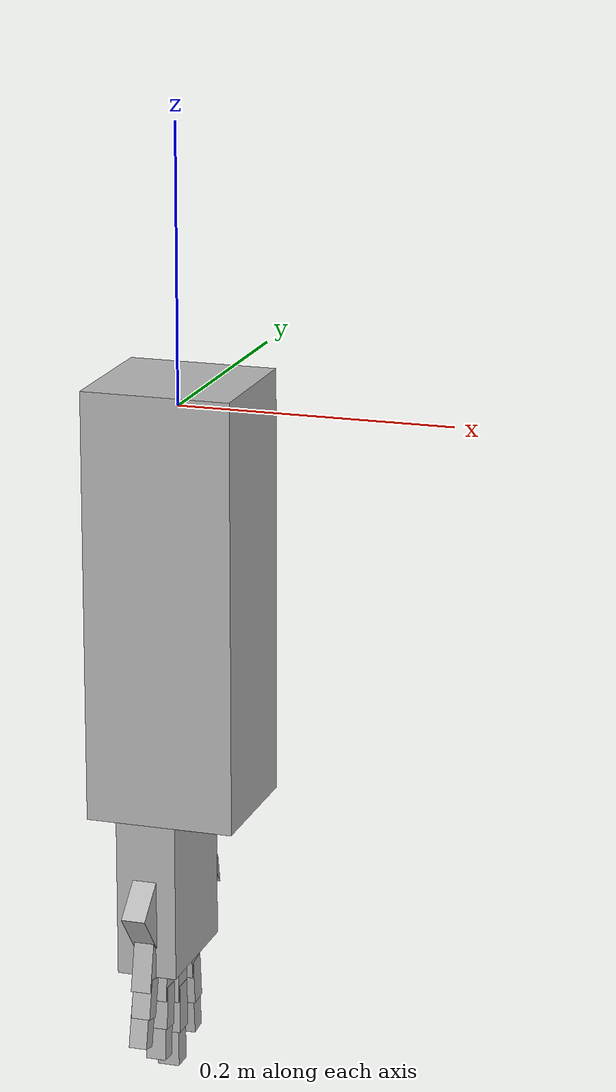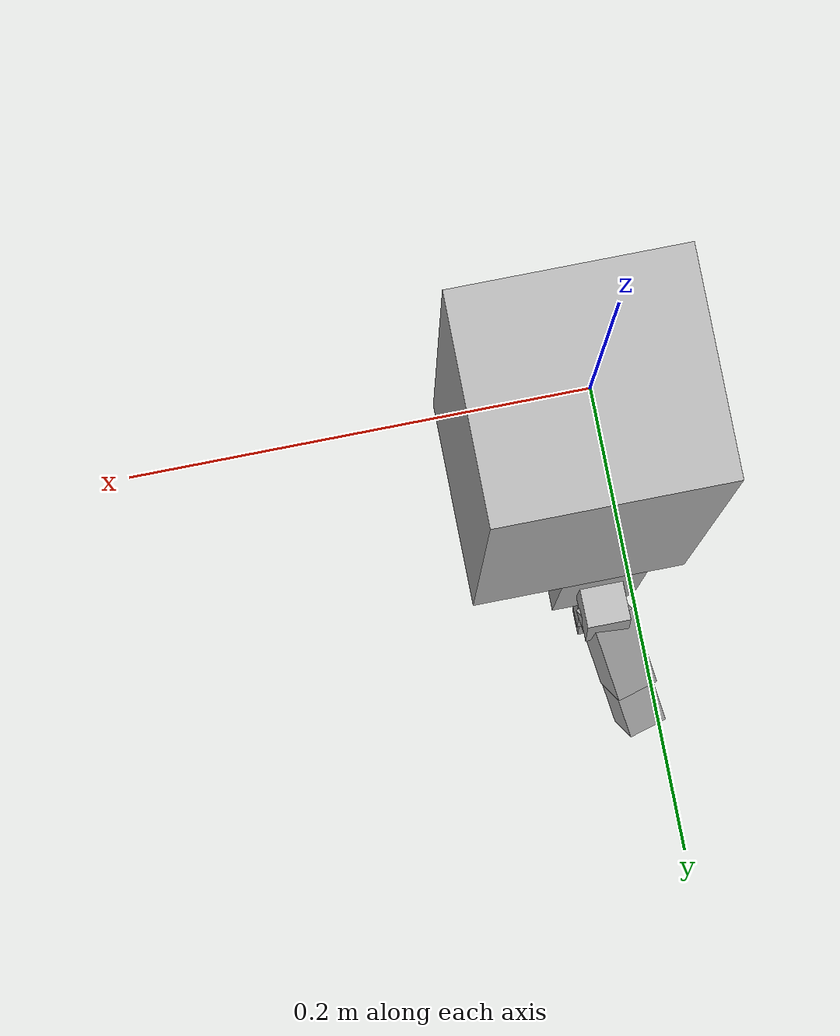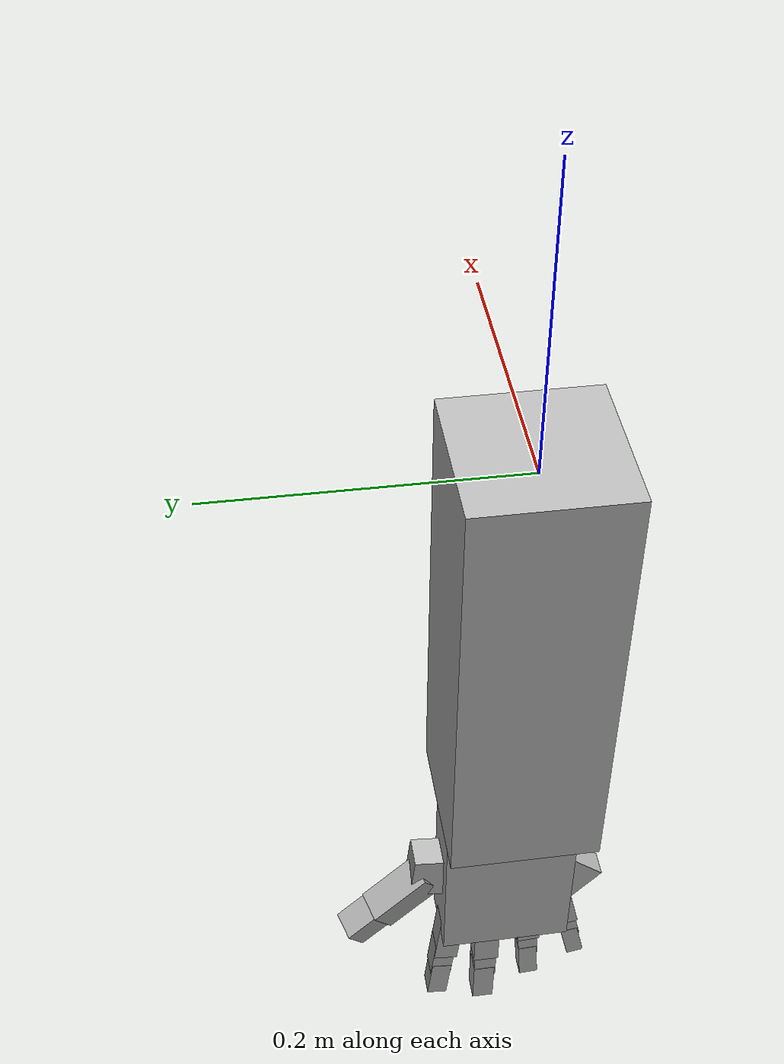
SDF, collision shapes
<sdf version='1.11'>
  <model name='inmoov_right_hand'>
    <link name='base_link'>
      <inertial>
        <pose>0.0002699999999999999 0.0013140000000000001 -0.13950299999999999 0 0 0</pose>
        <mass>0.089999999999999997</mass>
        <inertia>
          <ixx>0.00082543799999999974</ixx>
          <ixy>-6.6174449004242207e-24</ixy>
          <ixz>8.4703294725430034e-22</ixz>
          <iyy>0.0008331250000000001</iyy>
          <iyz>0</iyz>
          <izz>0.00016974700000000001</izz>
        </inertia>
      </inertial>
      <collision name='base_link_fixed_joint_lump__forearm_link_collision_collision'>
        <pose>0.00027 0.0013140000000000001 -0.13950299999999999 0 0 0</pose>
        <geometry>
          <box>
            <size>0.108761 0.10394200000000001 0.31504700000000002</size>
          </box>
        </geometry>
      </collision>
      <visual name='base_link_fixed_joint_lump__forearm_link_visual_visual'>
        <pose>0 0 0 0 0 0</pose>
        <geometry>
          <mesh>
            <scale>0.001 0.001 0.001</scale>
            <uri>meshes/r_forearm.stl</uri>
          </mesh>
        </geometry>
      </visual>
    </link>
    <joint name='wrist_joint' type='revolute'>
      <pose relative_to='base_link'>-0.0144 0.01 -0.28849999999999998 0 0 0</pose>
      <parent>base_link</parent>
      <child>hand_link</child>
      <axis>
        <xyz>0 0 1</xyz>
        <limit>
          <lower>-3.1415899999999999</lower>
          <upper>0</upper>
          <effort>2</effort>
          <velocity>1</velocity>
        </limit>
        <dynamics>
          <spring_reference>0</spring_reference>
          <spring_stiffness>0</spring_stiffness>
        </dynamics>
      </axis>
    </joint>
    <link name='hand_link'>
      <pose relative_to='wrist_joint'>0 0 0 0 0 0</pose>
      <inertial>
        <pose>0.00061799999999999995 -0.0040000000000000001 -0.064310000000000006 0 0 0</pose>
        <mass>0.080000000000000002</mass>
        <inertia>
          <ixx>0.000167935</ixx>
          <ixy>0</ixy>
          <ixz>0</ixz>
          <iyy>0.000123199</iyy>
          <iyz>0</iyz>
          <izz>7.0939999999999995e-05</izz>
        </inertia>
      </inertial>
      <collision name='hand_link_collision_collision'>
        <pose>0.00061799999999999995 -0.0040000000000000001 -0.064310000000000006 0 0 0</pose>
        <geometry>
          <box>
            <size>0.044331000000000002 0.093143000000000004 0.12850900000000001</size>
          </box>
        </geometry>
      </collision>
      <visual name='hand_link_visual_visual'>
        <pose>0 0 0 0 0 0</pose>
        <geometry>
          <mesh>
            <scale>0.001 0.001 0.001</scale>
            <uri>meshes/r_hand.stl</uri>
          </mesh>
        </geometry>
      </visual>
    </link>
    <joint name='index1_joint' type='revolute'>
      <pose relative_to='hand_link'>-0.0015 0.034200000000000001 -0.11899999999999999 0.099999999999999978 0 0</pose>
      <parent>hand_link</parent>
      <child>index1_link</child>
      <axis>
        <xyz>0 1 0</xyz>
        <limit>
          <lower>0</lower>
          <upper>1.5708</upper>
          <effort>2</effort>
          <velocity>0.78539999999999999</velocity>
        </limit>
        <dynamics>
          <spring_reference>0</spring_reference>
          <spring_stiffness>0</spring_stiffness>
        </dynamics>
      </axis>
    </joint>
    <link name='index1_link'>
      <pose relative_to='index1_joint'>0 0 0 0 0 0</pose>
      <inertial>
        <pose>0.000214 -3.4999999999999997e-05 -0.018217000000000001 0 0 0</pose>
        <mass>0.012</mass>
        <inertia>
          <ixx>2.6809999999999998e-06</ixx>
          <ixy>0</ixy>
          <ixz>0</ixz>
          <iyy>2.6769999999999999e-06</iyy>
          <iyz>0</iyz>
          <izz>5.9800000000000003e-07</izz>
        </inertia>
      </inertial>
      <collision name='index1_link_collision_collision'>
        <pose>0.000214 -3.4999999999999997e-05 -0.018217000000000001 0 0 0</pose>
        <geometry>
          <box>
            <size>0.017239000000000001 0.017350000000000001 0.048786000000000003</size>
          </box>
        </geometry>
      </collision>
      <visual name='index1_link_visual_visual'>
        <pose>0 0 0 0 0 0</pose>
        <geometry>
          <mesh>
            <scale>0.001 0.001 0.001</scale>
            <uri>meshes/index3_1.stl</uri>
          </mesh>
        </geometry>
      </visual>
    </link>
    <joint name='index_joint' type='revolute'>
      <pose relative_to='index1_link'>0 0.001 -0.035950000000000003 0 0 0</pose>
      <parent>index1_link</parent>
      <child>index2_link</child>
      <axis>
        <xyz>0 1 0</xyz>
        <mimic joint='index1_joint'>
          <multiplier>1</multiplier>
          <offset>0</offset>
          <reference>0</reference>
        </mimic>
        <limit>
          <lower>0</lower>
          <upper>1.5708</upper>
          <effort>0</effort>
          <velocity>0.78539999999999999</velocity>
        </limit>
        <dynamics>
          <spring_reference>0</spring_reference>
          <spring_stiffness>0</spring_stiffness>
        </dynamics>
      </axis>
    </joint>
    <link name='index2_link'>
      <pose relative_to='index_joint'>0 0 0 0 0 0</pose>
      <inertial>
        <pose>0.00094600000000000001 3.4999999999999997e-05 -0.012097999999999999 0 0 0</pose>
        <mass>0.0080000000000000002</mass>
        <inertia>
          <ixx>9.3099999999999996e-07</ixx>
          <ixy>0</ixy>
          <ixz>0</ixz>
          <iyy>9.5300000000000002e-07</iyy>
          <iyz>0</iyz>
          <izz>3.3700000000000001e-07</izz>
        </inertia>
      </inertial>
      <collision name='index2_link_collision_collision'>
        <pose>0.00094600000000000001 3.4999999999999997e-05 -0.012097999999999999 0 0 0</pose>
        <geometry>
          <box>
            <size>0.016419 0.01536 0.034057999999999998</size>
          </box>
        </geometry>
      </collision>
      <visual name='index2_link_visual_visual'>
        <pose>0 0 0 0 0 0</pose>
        <geometry>
          <mesh>
            <scale>0.001 0.001 0.001</scale>
            <uri>meshes/index3_2.stl</uri>
          </mesh>
        </geometry>
      </visual>
    </link>
    <joint name='index3_joint' type='revolute'>
      <pose relative_to='index2_link'>0 0 -0.024 0 0 0</pose>
      <parent>index2_link</parent>
      <child>index3_link</child>
      <axis>
        <xyz>0 1 0</xyz>
        <mimic joint='index1_joint'>
          <multiplier>1</multiplier>
          <offset>0</offset>
          <reference>0</reference>
        </mimic>
        <limit>
          <lower>0</lower>
          <upper>1.5708</upper>
          <effort>0</effort>
          <velocity>0.78539999999999999</velocity>
        </limit>
        <dynamics>
          <spring_reference>0</spring_reference>
          <spring_stiffness>0</spring_stiffness>
        </dynamics>
      </axis>
    </joint>
    <link name='index3_link'>
      <pose relative_to='index3_joint'>0 0 0 0 0 0</pose>
      <inertial>
        <pose>0.00018100000000000001 -3.8999999999999999e-05 -0.012760000000000001 0 0 0</pose>
        <mass>0.0050000000000000001</mass>
        <inertia>
          <ixx>6.0100000000000005e-07</ixx>
          <ixy>0</ixy>
          <ixz>0</ixz>
          <iyy>6.13e-07</iyy>
          <iyz>0</iyz>
          <izz>1.9000000000000001e-07</izz>
        </inertia>
      </inertial>
      <collision name='index3_link_collision_collision'>
        <pose>0.00018100000000000001 -3.8999999999999999e-05 -0.012760000000000001 0 0 0</pose>
        <geometry>
          <box>
            <size>0.01553 0.014616000000000001 0.035068000000000002</size>
          </box>
        </geometry>
      </collision>
      <visual name='index3_link_visual_visual'>
        <pose>0 0 0 0 0 0</pose>
        <geometry>
          <mesh>
            <scale>0.001 0.001 0.001</scale>
            <uri>meshes/index3_3.stl</uri>
          </mesh>
        </geometry>
      </visual>
    </link>
    <joint name='middle1_joint' type='revolute'>
      <pose relative_to='hand_link'>-0.00175 0.0070000000000000001 -0.12325 0 0 0</pose>
      <parent>hand_link</parent>
      <child>middle1_link</child>
      <axis>
        <xyz>0 1 0</xyz>
        <limit>
          <lower>0</lower>
          <upper>1.5708</upper>
          <effort>2</effort>
          <velocity>0.78539999999999999</velocity>
        </limit>
        <dynamics>
          <spring_reference>0</spring_reference>
          <spring_stiffness>0</spring_stiffness>
        </dynamics>
      </axis>
    </joint>
    <link name='middle1_link'>
      <pose relative_to='middle1_joint'>0 0 0 0 0 0</pose>
      <inertial>
        <pose>0.00013200000000000001 5.0000000000000004e-06 -0.019390999999999999 0 0 0</pose>
        <mass>0.012</mass>
        <inertia>
          <ixx>3.0819999999999999e-06</ixx>
          <ixy>0</ixy>
          <ixz>0</ixz>
          <iyy>3.078e-06</iyy>
          <iyz>0</iyz>
          <izz>6.8800000000000002e-07</izz>
        </inertia>
      </inertial>
      <collision name='middle1_link_collision_collision'>
        <pose>0.00013200000000000001 5.0000000000000004e-06 -0.019390999999999999 0 0 0</pose>
        <geometry>
          <box>
            <size>0.018482999999999999 0.018603000000000001 0.052306999999999999</size>
          </box>
        </geometry>
      </collision>
      <visual name='middle1_link_visual_visual'>
        <pose>0 0 0 0 0 0</pose>
        <geometry>
          <mesh>
            <scale>0.001 0.001 0.001</scale>
            <uri>meshes/middle3_1.stl</uri>
          </mesh>
        </geometry>
      </visual>
    </link>
    <joint name='middle_joint' type='revolute'>
      <pose relative_to='middle1_link'>0 0 -0.038899999999999997 0 0 0</pose>
      <parent>middle1_link</parent>
      <child>middle2_link</child>
      <axis>
        <xyz>0 1 0</xyz>
        <mimic joint='middle1_joint'>
          <multiplier>1</multiplier>
          <offset>0</offset>
          <reference>0</reference>
        </mimic>
        <limit>
          <lower>0</lower>
          <upper>1.5708</upper>
          <effort>0</effort>
          <velocity>0.78539999999999999</velocity>
        </limit>
        <dynamics>
          <spring_reference>0</spring_reference>
          <spring_stiffness>0</spring_stiffness>
        </dynamics>
      </axis>
    </joint>
    <link name='middle2_link'>
      <pose relative_to='middle_joint'>0 0 0 0 0 0</pose>
      <inertial>
        <pose>0.0010300000000000001 -1.7e-05 -0.012930000000000001 0 0 0</pose>
        <mass>0.0080000000000000002</mass>
        <inertia>
          <ixx>1.0699999999999999e-06</ixx>
          <ixy>0</ixy>
          <ixz>0</ixz>
          <iyy>1.096e-06</iyy>
          <iyz>0</iyz>
          <izz>3.8700000000000001e-07</izz>
        </inertia>
      </inertial>
      <collision name='middle2_link_collision_collision'>
        <pose>0.0010300000000000001 -1.7e-05 -0.012930000000000001 0 0 0</pose>
        <geometry>
          <box>
            <size>0.017604000000000002 0.016469000000000001 0.036516</size>
          </box>
        </geometry>
      </collision>
      <visual name='middle2_link_visual_visual'>
        <pose>0 0 0 0 0 0</pose>
        <geometry>
          <mesh>
            <scale>0.001 0.001 0.001</scale>
            <uri>meshes/middle3_2.stl</uri>
          </mesh>
        </geometry>
      </visual>
    </link>
    <joint name='middle3_joint' type='revolute'>
      <pose relative_to='middle2_link'>0 0.00050000000000000001 -0.025899999999999999 0 0 0</pose>
      <parent>middle2_link</parent>
      <child>middle3_link</child>
      <axis>
        <xyz>0 1 0</xyz>
        <mimic joint='middle1_joint'>
          <multiplier>1</multiplier>
          <offset>0</offset>
          <reference>0</reference>
        </mimic>
        <limit>
          <lower>0</lower>
          <upper>1.5708</upper>
          <effort>0</effort>
          <velocity>0.78539999999999999</velocity>
        </limit>
        <dynamics>
          <spring_reference>0</spring_reference>
          <spring_stiffness>0</spring_stiffness>
        </dynamics>
      </axis>
    </joint>
    <link name='middle3_link'>
      <pose relative_to='middle3_joint'>0 0 0 0 0 0</pose>
      <inertial>
        <pose>0.0001 -2.4000000000000001e-05 -0.01374 0 0 0</pose>
        <mass>0.0050000000000000001</mass>
        <inertia>
          <ixx>6.9100000000000003e-07</ixx>
          <ixy>0</ixy>
          <ixz>0</ixz>
          <iyy>7.0500000000000003e-07</iyy>
          <iyz>0</iyz>
          <izz>2.1799999999999999e-07</izz>
        </inertia>
      </inertial>
      <collision name='middle3_link_collision_collision'>
        <pose>0.0001 -2.4000000000000001e-05 -0.01374 0 0 0</pose>
        <geometry>
          <box>
            <size>0.016650999999999999 0.015671000000000001 0.037599</size>
          </box>
        </geometry>
      </collision>
      <visual name='middle3_link_visual_visual'>
        <pose>0 0 0 0 0 0</pose>
        <geometry>
          <mesh>
            <scale>0.001 0.001 0.001</scale>
            <uri>meshes/middle3_3.stl</uri>
          </mesh>
        </geometry>
      </visual>
    </link>
    <joint name='pinky1_joint' type='revolute'>
      <pose relative_to='hand_link'>0 -0.027 -0.055500000000000001 0.69999999999999996 0 0</pose>
      <parent>hand_link</parent>
      <child>pinky1_link</child>
      <axis>
        <xyz>0 0 -1</xyz>
        <limit>
          <lower>0</lower>
          <upper>1.5708</upper>
          <effort>2</effort>
          <velocity>0.78539999999999999</velocity>
        </limit>
        <dynamics>
          <spring_reference>0</spring_reference>
          <spring_stiffness>0</spring_stiffness>
        </dynamics>
      </axis>
    </joint>
    <link name='pinky1_link'>
      <pose relative_to='pinky1_joint'>0 0 0 0 0 0</pose>
      <inertial>
        <pose>-0.000348 -0.021364000000000001 -0.0063790000000000001 0 0 0</pose>
        <mass>0.012</mass>
        <inertia>
          <ixx>5.3510000000000001e-06</ixx>
          <ixy>0</ixy>
          <ixz>0</ixz>
          <iyy>2.198e-06</iyy>
          <iyz>0</iyz>
          <izz>3.7799999999999998e-06</izz>
        </inertia>
      </inertial>
      <collision name='pinky1_link_collision_collision'>
        <pose>-0.000348 -0.021364000000000001 -0.0063790000000000001 0 0 0</pose>
        <geometry>
          <box>
            <size>0.017696 0.058876999999999999 0.043410999999999998</size>
          </box>
        </geometry>
      </collision>
      <visual name='pinky1_link_visual_visual'>
        <pose>0 0 0 0 0 0</pose>
        <geometry>
          <mesh>
            <scale>0.001 0.001 0.001</scale>
            <uri>meshes/r_pinky3_1.stl</uri>
          </mesh>
        </geometry>
      </visual>
    </link>
    <joint name='pinky_joint' type='revolute'>
      <pose relative_to='pinky1_link'>0 -0.045999999999999999 -0.022800000000000001 -0.93000000000000005 0 0</pose>
      <parent>pinky1_link</parent>
      <child>pinky2_link</child>
      <axis>
        <xyz>0 1 0</xyz>
        <mimic joint='pinky1_joint'>
          <multiplier>1</multiplier>
          <offset>0</offset>
          <reference>0</reference>
        </mimic>
        <limit>
          <lower>0</lower>
          <upper>1.5708</upper>
          <effort>0</effort>
          <velocity>0.78539999999999999</velocity>
        </limit>
        <dynamics>
          <spring_reference>0</spring_reference>
          <spring_stiffness>0</spring_stiffness>
        </dynamics>
      </axis>
    </joint>
    <link name='pinky2_link'>
      <pose relative_to='pinky_joint'>0 0 0 0 0 0</pose>
      <inertial>
        <pose>0.00019799999999999999 6.3999999999999997e-05 -0.015606999999999999 0 0 0</pose>
        <mass>0.0080000000000000002</mass>
        <inertia>
          <ixx>1.3200000000000001e-06</ixx>
          <ixy>0</ixy>
          <ixz>0</ixz>
          <iyy>1.3179999999999999e-06</iyy>
          <iyz>0</iyz>
          <izz>2.9499999999999998e-07</izz>
        </inertia>
      </inertial>
      <collision name='pinky2_link_collision_collision'>
        <pose>0.00019799999999999999 6.3999999999999997e-05 -0.015606999999999999 0 0 0</pose>
        <geometry>
          <box>
            <size>0.014814000000000001 0.01491 0.041924000000000003</size>
          </box>
        </geometry>
      </collision>
      <visual name='pinky2_link_visual_visual'>
        <pose>0 0 0 0 0 0</pose>
        <geometry>
          <mesh>
            <scale>0.001 0.001 0.001</scale>
            <uri>meshes/pinky3_2.stl</uri>
          </mesh>
        </geometry>
      </visual>
    </link>
    <joint name='pinky3_joint' type='revolute'>
      <pose relative_to='pinky2_link'>0 0.00050000000000000001 -0.031 0 0 0</pose>
      <parent>pinky2_link</parent>
      <child>pinky3_link</child>
      <axis>
        <xyz>0 1 0</xyz>
        <mimic joint='pinky1_joint'>
          <multiplier>1</multiplier>
          <offset>0</offset>
          <reference>0</reference>
        </mimic>
        <limit>
          <lower>0</lower>
          <upper>1.5708</upper>
          <effort>0</effort>
          <velocity>0.78539999999999999</velocity>
        </limit>
        <dynamics>
          <spring_reference>0</spring_reference>
          <spring_stiffness>0</spring_stiffness>
        </dynamics>
      </axis>
    </joint>
    <link name='pinky3_link'>
      <pose relative_to='pinky3_joint'>0 0 0 0 0 0</pose>
      <inertial>
        <pose>0.000861 -4.3000000000000002e-05 -0.01044 0 0 0</pose>
        <mass>0.0060000000000000001</mass>
        <inertia>
          <ixx>5.1500000000000005e-07</ixx>
          <ixy>0</ixy>
          <ixz>0</ixz>
          <iyy>5.2799999999999996e-07</iyy>
          <iyz>0</iyz>
          <izz>1.8699999999999999e-07</izz>
        </inertia>
      </inertial>
      <collision name='pinky3_link_collision_collision'>
        <pose>0.000861 -4.3000000000000002e-05 -0.01044 0 0 0</pose>
        <geometry>
          <box>
            <size>0.014109999999999999 0.0132 0.029267999999999999</size>
          </box>
        </geometry>
      </collision>
      <visual name='pinky3_link_visual_visual'>
        <pose>0 0 0 0 0 0</pose>
        <geometry>
          <mesh>
            <scale>0.001 0.001 0.001</scale>
            <uri>meshes/pinky3_3.stl</uri>
          </mesh>
        </geometry>
      </visual>
    </link>
    <joint name='pinky4_joint' type='revolute'>
      <pose relative_to='pinky3_link'>0 0.00040000000000000002 -0.020799999999999999 0 0 0</pose>
      <parent>pinky3_link</parent>
      <child>pinky4_link</child>
      <axis>
        <xyz>0 1 0</xyz>
        <mimic joint='pinky1_joint'>
          <multiplier>1</multiplier>
          <offset>0</offset>
          <reference>0</reference>
        </mimic>
        <limit>
          <lower>0</lower>
          <upper>1.5708</upper>
          <effort>0</effort>
          <velocity>0.78539999999999999</velocity>
        </limit>
        <dynamics>
          <spring_reference>0</spring_reference>
          <spring_stiffness>0</spring_stiffness>
        </dynamics>
      </axis>
    </joint>
    <link name='pinky4_link'>
      <pose relative_to='pinky4_joint'>0 0 0 0 0 0</pose>
      <inertial>
        <pose>0.000107 -2.9e-05 -0.011013999999999999 0 0 0</pose>
        <mass>0.0050000000000000001</mass>
        <inertia>
          <ixx>4.4400000000000001e-07</ixx>
          <ixy>0</ixy>
          <ixz>0</ixz>
          <iyy>4.5299999999999999e-07</iyy>
          <iyz>0</iyz>
          <izz>1.4000000000000001e-07</izz>
        </inertia>
      </inertial>
      <collision name='pinky4_link_collision_collision'>
        <pose>0.000107 -2.9e-05 -0.011013999999999999 0 0 0</pose>
        <geometry>
          <box>
            <size>0.013346 0.01256 0.030136</size>
          </box>
        </geometry>
      </collision>
      <visual name='pinky4_link_visual_visual'>
        <pose>0 0 0 0 0 0</pose>
        <geometry>
          <mesh>
            <scale>0.001 0.001 0.001</scale>
            <uri>meshes/pinky3_4.stl</uri>
          </mesh>
        </geometry>
      </visual>
    </link>
    <joint name='ring1_joint' type='revolute'>
      <pose relative_to='hand_link'>0 -0.0070499999999999998 -0.079399999999999998 0.69999999999999996 0 0</pose>
      <parent>hand_link</parent>
      <child>ring1_link</child>
      <axis>
        <xyz>0 0 -1</xyz>
        <limit>
          <lower>0</lower>
          <upper>1.5708</upper>
          <effort>2</effort>
          <velocity>0.78539999999999999</velocity>
        </limit>
        <dynamics>
          <spring_reference>0</spring_reference>
          <spring_stiffness>0</spring_stiffness>
        </dynamics>
      </axis>
    </joint>
    <link name='ring1_link'>
      <pose relative_to='ring1_joint'>0 0 0 0 0 0</pose>
      <inertial>
        <pose>2.3e-05 -0.016583000000000001 -0.0032989999999999998 0 0 0</pose>
        <mass>0.012</mass>
        <inertia>
          <ixx>3.8430000000000003e-06</ixx>
          <ixy>0</ixy>
          <ixz>0</ixz>
          <iyy>1.764e-06</iyy>
          <iyz>0</iyz>
          <izz>2.7049999999999999e-06</izz>
        </inertia>
      </inertial>
      <collision name='ring1_link_collision_collision'>
        <pose>2.3e-05 -0.016583000000000001 -0.0032989999999999998 0 0 0</pose>
        <geometry>
          <box>
            <size>0.017686 0.048905999999999998 0.038092000000000001</size>
          </box>
        </geometry>
      </collision>
      <visual name='ring1_link_visual_visual'>
        <pose>0 0 0 0 0 0</pose>
        <geometry>
          <mesh>
            <scale>0.001 0.001 0.001</scale>
            <uri>meshes/r_ring3_1.stl</uri>
          </mesh>
        </geometry>
      </visual>
    </link>
    <joint name='ring_joint' type='revolute'>
      <pose relative_to='ring1_link'>0.0012600000000000001 -0.035099999999999999 -0.0166 -0.77749999999999997 0 0</pose>
      <parent>ring1_link</parent>
      <child>ring2_link</child>
      <axis>
        <xyz>0 1 0</xyz>
        <mimic joint='ring1_joint'>
          <multiplier>1</multiplier>
          <offset>0</offset>
          <reference>0</reference>
        </mimic>
        <limit>
          <lower>0</lower>
          <upper>1.5708</upper>
          <effort>0</effort>
          <velocity>0.78539999999999999</velocity>
        </limit>
        <dynamics>
          <spring_reference>0</spring_reference>
          <spring_stiffness>0</spring_stiffness>
        </dynamics>
      </axis>
    </joint>
    <link name='ring2_link'>
      <pose relative_to='ring_joint'>0 0 0 0 0 0</pose>
      <inertial>
        <pose>0.00012300000000000001 -4.1e-05 -0.017267000000000001 0 0 0</pose>
        <mass>0.0080000000000000002</mass>
        <inertia>
          <ixx>1.6279999999999999e-06</ixx>
          <ixy>0</ixy>
          <ixz>0</ixz>
          <iyy>1.6249999999999999e-06</iyy>
          <iyz>0</iyz>
          <izz>3.6300000000000001e-07</izz>
        </inertia>
      </inertial>
      <collision name='ring2_link_collision_collision'>
        <pose>0.00012300000000000001 -4.1e-05 -0.017267000000000001 0 0 0</pose>
        <geometry>
          <box>
            <size>0.016449999999999999 0.016556999999999999 0.046553999999999998</size>
          </box>
        </geometry>
      </collision>
      <visual name='ring2_link_visual_visual'>
        <pose>0 0 0 0 0 0</pose>
        <geometry>
          <mesh>
            <scale>0.001 0.001 0.001</scale>
            <uri>meshes/ring3_2.stl</uri>
          </mesh>
        </geometry>
      </visual>
    </link>
    <joint name='ring3_joint' type='revolute'>
      <pose relative_to='ring2_link'>0 0.00050000000000000001 -0.034500000000000003 0 0 0</pose>
      <parent>ring2_link</parent>
      <child>ring3_link</child>
      <axis>
        <xyz>0 1 0</xyz>
        <mimic joint='ring1_joint'>
          <multiplier>1</multiplier>
          <offset>0</offset>
          <reference>0</reference>
        </mimic>
        <limit>
          <lower>0</lower>
          <upper>1.5708</upper>
          <effort>0</effort>
          <velocity>0.78539999999999999</velocity>
        </limit>
        <dynamics>
          <spring_reference>0</spring_reference>
          <spring_stiffness>0</spring_stiffness>
        </dynamics>
      </axis>
    </joint>
    <link name='ring3_link'>
      <pose relative_to='ring3_joint'>0 0 0 0 0 0</pose>
      <inertial>
        <pose>0.00094899999999999997 1.5e-05 -0.011473000000000001 0 0 0</pose>
        <mass>0.0060000000000000001</mass>
        <inertia>
          <ixx>6.3600000000000003e-07</ixx>
          <ixy>0</ixy>
          <ixz>0</ixz>
          <iyy>6.5099999999999999e-07</iyy>
          <iyz>0</iyz>
          <izz>2.2999999999999999e-07</izz>
        </inertia>
      </inertial>
      <collision name='ring3_link_collision_collision'>
        <pose>0.00094899999999999997 1.5e-05 -0.011473000000000001 0 0 0</pose>
        <geometry>
          <box>
            <size>0.015668000000000001 0.014657999999999999 0.032500000000000001</size>
          </box>
        </geometry>
      </collision>
      <visual name='ring3_link_visual_visual'>
        <pose>0 0 0 0 0 0</pose>
        <geometry>
          <mesh>
            <scale>0.001 0.001 0.001</scale>
            <uri>meshes/ring3_3.stl</uri>
          </mesh>
        </geometry>
      </visual>
    </link>
    <joint name='ring4_joint' type='revolute'>
      <pose relative_to='ring3_link'>0 0.00040000000000000002 -0.0229 0 0 0</pose>
      <parent>ring3_link</parent>
      <child>ring4_link</child>
      <axis>
        <xyz>0 1 0</xyz>
        <mimic joint='ring1_joint'>
          <multiplier>1</multiplier>
          <offset>0</offset>
          <reference>0</reference>
        </mimic>
        <limit>
          <lower>0</lower>
          <upper>1.5708</upper>
          <effort>0</effort>
          <velocity>0.78539999999999999</velocity>
        </limit>
        <dynamics>
          <spring_reference>0</spring_reference>
          <spring_stiffness>0</spring_stiffness>
        </dynamics>
      </axis>
    </joint>
    <link name='ring4_link'>
      <pose relative_to='ring4_joint'>0 0 0 0 0 0</pose>
      <inertial>
        <pose>0.000108 5.7000000000000003e-05 -0.012248 0 0 0</pose>
        <mass>0.0050000000000000001</mass>
        <inertia>
          <ixx>5.4799999999999998e-07</ixx>
          <ixy>0</ixy>
          <ixz>0</ixz>
          <iyy>5.5799999999999999e-07</iyy>
          <iyz>0</iyz>
          <izz>1.73e-07</izz>
        </inertia>
      </inertial>
      <collision name='ring4_link_collision_collision'>
        <pose>0.000108 5.7000000000000003e-05 -0.012248 0 0 0</pose>
        <geometry>
          <box>
            <size>0.01482 0.013946999999999999 0.033464000000000001</size>
          </box>
        </geometry>
      </collision>
      <visual name='ring4_link_visual_visual'>
        <pose>0 0 0 0 0 0</pose>
        <geometry>
          <mesh>
            <scale>0.001 0.001 0.001</scale>
            <uri>meshes/ring3_4.stl</uri>
          </mesh>
        </geometry>
      </visual>
    </link>
    <joint name='thumb1_joint' type='revolute'>
      <pose relative_to='hand_link'>0 0.029000000000000001 -0.057700000000000001 0.099999999999999978 0 0</pose>
      <parent>hand_link</parent>
      <child>thumb1_link</child>
      <axis>
        <xyz>-0.27058399999999999 0.626579 0.73087800000000003</xyz>
        <limit>
          <lower>0</lower>
          <upper>1.5708</upper>
          <effort>2</effort>
          <velocity>0.78539999999999999</velocity>
        </limit>
        <dynamics>
          <spring_reference>0</spring_reference>
          <spring_stiffness>0</spring_stiffness>
        </dynamics>
      </axis>
    </joint>
    <link name='thumb1_link'>
      <pose relative_to='thumb1_joint'>0 0 0 0 0 0</pose>
      <inertial>
        <pose>0.00096299999999999999 0.014245000000000001 -0.002967 0 0 0</pose>
        <mass>0.012</mass>
        <inertia>
          <ixx>3.1420000000000002e-06</ixx>
          <ixy>0</ixy>
          <ixz>0</ixz>
          <iyy>1.7990000000000001e-06</iyy>
          <iyz>0</iyz>
          <izz>2.3599999999999999e-06</izz>
        </inertia>
      </inertial>
      <collision name='thumb1_link_collision_collision'>
        <pose>0.00096299999999999999 0.014245000000000001 -0.002967 0 0 0</pose>
        <geometry>
          <box>
            <size>0.022556 0.043031 0.035922999999999997</size>
          </box>
        </geometry>
      </collision>
      <visual name='thumb1_link_visual_visual'>
        <pose>0 0 0 0 0 0</pose>
        <geometry>
          <mesh>
            <scale>0.001 0.001 0.001</scale>
            <uri>meshes/r_thumb5_1.stl</uri>
          </mesh>
        </geometry>
      </visual>
    </link>
    <joint name='thumb_joint' type='revolute'>
      <pose relative_to='thumb1_link'>-0.00051999999999999995 0.02725 -0.012999999999999999 0.82499999999999996 -0.10000000000000003 0.29999999999999999</pose>
      <parent>thumb1_link</parent>
      <child>thumb2_link</child>
      <axis>
        <xyz>0 1 0</xyz>
        <mimic joint='thumb1_joint'>
          <multiplier>1</multiplier>
          <offset>0</offset>
          <reference>0</reference>
        </mimic>
        <limit>
          <lower>0</lower>
          <upper>1.5708</upper>
          <effort>0</effort>
          <velocity>0.78539999999999999</velocity>
        </limit>
        <dynamics>
          <spring_reference>0</spring_reference>
          <spring_stiffness>0</spring_stiffness>
        </dynamics>
      </axis>
    </joint>
    <link name='thumb2_link'>
      <pose relative_to='thumb_joint'>0 0 0 0 0 0</pose>
      <inertial>
        <pose>-9.8999999999999994e-05 -6.4999999999999994e-05 -0.018432 0 0 0</pose>
        <mass>0.0080000000000000002</mass>
        <inertia>
          <ixx>1.875e-06</ixx>
          <ixy>0</ixy>
          <ixz>0</ixz>
          <iyy>1.875e-06</iyy>
          <iyz>0</iyz>
          <izz>6.9299999999999997e-07</izz>
        </inertia>
      </inertial>
      <collision name='thumb2_link_collision_collision'>
        <pose>-9.8999999999999994e-05 -6.4999999999999994e-05 -0.018432 0 0 0</pose>
        <geometry>
          <box>
            <size>0.022806 0.022800000000000001 0.047879999999999999</size>
          </box>
        </geometry>
      </collision>
      <visual name='thumb2_link_visual_visual'>
        <pose>0 0 0 0 0 0</pose>
        <geometry>
          <mesh>
            <scale>0.001 0.001 0.001</scale>
            <uri>meshes/thumb5_2.stl</uri>
          </mesh>
        </geometry>
      </visual>
    </link>
    <joint name='thumb3_joint' type='revolute'>
      <pose relative_to='thumb2_link'>0 0 -0.035000000000000003 0 0 0</pose>
      <parent>thumb2_link</parent>
      <child>thumb3_link</child>
      <axis>
        <xyz>0 1 0</xyz>
        <mimic joint='thumb1_joint'>
          <multiplier>1</multiplier>
          <offset>0</offset>
          <reference>0</reference>
        </mimic>
        <limit>
          <lower>0</lower>
          <upper>1.5708</upper>
          <effort>0</effort>
          <velocity>0.78539999999999999</velocity>
        </limit>
        <dynamics>
          <spring_reference>0</spring_reference>
          <spring_stiffness>0</spring_stiffness>
        </dynamics>
      </axis>
    </joint>
    <link name='thumb3_link'>
      <pose relative_to='thumb3_joint'>0 0 0 0 0 0</pose>
      <inertial>
        <pose>0.00067299999999999999 -3.0000000000000001e-06 -0.012777999999999999 0 0 0</pose>
        <mass>0.0050000000000000001</mass>
        <inertia>
          <ixx>8.1699999999999997e-07</ixx>
          <ixy>0</ixy>
          <ixz>0</ixz>
          <iyy>8.3900000000000004e-07</iyy>
          <iyz>0</iyz>
          <izz>3.4999999999999998e-07</izz>
        </inertia>
      </inertial>
      <collision name='thumb3_link_collision_collision'>
        <pose>0.00067299999999999999 -3.0000000000000001e-06 -0.012777999999999999 0 0 0</pose>
        <geometry>
          <box>
            <size>0.021107999999999998 0.019858000000000001 0.039592000000000002</size>
          </box>
        </geometry>
      </collision>
      <visual name='thumb3_link_visual_visual'>
        <pose>0 0 0 0 0 0</pose>
        <geometry>
          <mesh>
            <scale>0.001 0.001 0.001</scale>
            <uri>meshes/thumb5_3.stl</uri>
          </mesh>
        </geometry>
      </visual>
    </link>
    <frame name='forearm_mount_joint' attached_to='base_link'>
      <pose>0 0 0 0 0 0</pose>
    </frame>
    <frame name='forearm_link' attached_to='forearm_mount_joint'>
      <pose>0 0 0 0 0 0</pose>
    </frame>
  </model>
</sdf>
